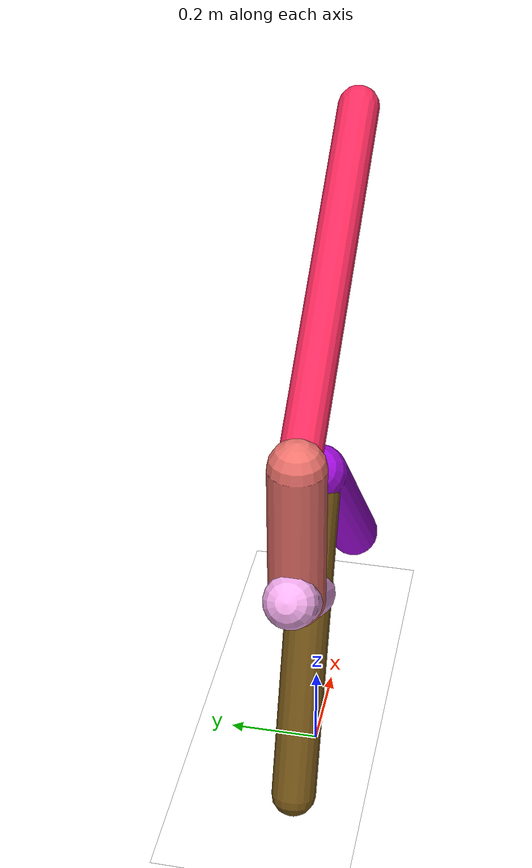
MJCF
<mujoco model="morphology">
  <option timestep="0.01"/>
  <default>
    <default class="/"/>
    <default class="0/"/>
    <default class="0/1/"/>
    <default class="0/2/"/>
    <default class="0/2/3/"/>
    <default class="0/2/3/4/"/>
  </default>
  <asset>
    <texture name="texplane" type="2d" builtin="checker" rgb1="0.10000000000000001 0.20000000000000001 0.29999999999999999" rgb2="0.20000000000000001 0.29999999999999999 0.40000000000000002" width="300" height="300"/>
    <material name="MatPlane" class="/" texture="texplane" texrepeat="20 20" specular="1" shininess="1" reflectance="0.5"/>
  </asset>
  <worldbody>
    <light name="//unnamed_light_0" class="/" directional="true" pos="0 0 1.5" dir="0 0 -1.3" cutoff="100" exponent="1" diffuse="1 1 1" specular="0.10000000000000001 0.10000000000000001 0.10000000000000001"/>
    <geom name="ground" class="/" type="plane" size="15 15 0.5" material="MatPlane" rgba="1 1 1 1"/>
    <site name="body" class="/" size="9.9999999999999995e-07 9.9999999999999995e-07 9.9999999999999995e-07" pos="0 0 0.77126810550689695"/>
    <body pos="0 0 0.77126810550689695" name="0/">
      <joint name="0/rootx/" class="/" type="slide" axis="1 0 0" limited="false" stiffness="0" armature="0" damping="0"/>
      <joint name="0/rootz/" class="/" type="slide" axis="0 0 1" limited="false" stiffness="0" armature="0" damping="0"/>
      <joint name="0/rooty/" class="/" type="hinge" axis="0 1 0" limited="false" stiffness="0" armature="0" damping="0"/>
      <geom name="0/geom" class="0/" type="capsule" contype="1" conaffinity="1" condim="3" size="0.048162133455641909" rgba="0.48620816058351801 0.35514874041507738 0.096488077410527007 1" friction="0.59999999999999998 0.10000000000000001 0.10000000000000001" fromto="0 0 0 -0.26494225054728776 0 -0.67126809894481942"/>
      <site name="0/end0" class="0/" size="0.0050000000000000001" pos="-0.26494225054728776 0 -0.67126809894481942"/>
      <site name="0/attach1" class="0/" size="9.9999999999999995e-07 9.9999999999999995e-07 9.9999999999999995e-07" pos="-0.00076587829759178444 0 -0.0019404593558994166"/>
      <body pos="-0.00076587829759178444 0 -0.0019404593558994166" name="0/1/">
        <joint name="0/1/joint/" class="0/" type="hinge" axis="0 1 0" limited="true" range="-68.309639477992022 68.309639477992022"/>
        <geom name="0/1/geom" class="0/1/" type="capsule" contype="1" conaffinity="1" condim="3" size="0.058908095491325432" rgba="0.64089917892439363 0.04736625288630858 0.87310363161929072 1" friction="0.59999999999999998 0.10000000000000001 0.10000000000000001" fromto="0 0 0 0.49935828008226513 0 -0.55082220733667442"/>
        <site name="0/1/end1" class="0/1/" size="0.0050000000000000001" pos="0.49935828008226513 0 -0.55082220733667442"/>
      </body>
      <site name="0/attach2" class="0/" size="9.9999999999999995e-07 9.9999999999999995e-07 9.9999999999999995e-07" pos="-0.096014106825102793 0 -0.24326511467021794"/>
      <body pos="-0.096014106825102793 0 -0.24326511467021794" name="0/2/">
        <joint name="0/2/joint/" class="0/" type="hinge" axis="0 1 0" limited="true" range="-61.330416394534367 61.330416394534367"/>
        <geom name="0/2/geom" class="0/2/" type="capsule" contype="1" conaffinity="1" condim="3" size="0.055307560030097909" rgba="0.97528226693042297 0.68876270836695641 0.94907431036160383 1" friction="0.59999999999999998 0.10000000000000001 0.10000000000000001" fromto="0 0 0 -0.1925383185503875 0 0.14092497750549748"/>
        <site name="0/2/end2" class="0/2/" size="0.0050000000000000001" pos="-0.1925383185503875 0 0.14092497750549748"/>
        <site name="0/2/attach3" class="0/2/" size="9.9999999999999995e-07 9.9999999999999995e-07 9.9999999999999995e-07" pos="-0.12842852829080217 0 0.094000963531365681"/>
        <body pos="-0.12842852829080217 0 0.094000963531365681" name="0/2/3/">
          <geom name="0/2/3/geom" class="0/2/3/" type="capsule" contype="1" conaffinity="1" condim="3" size="0.057964305058858516" rgba="0.92051851300439136 0.4434520131578239 0.41883219875308386 1" friction="0.59999999999999998 0.10000000000000001 0.10000000000000001" fromto="0 0 0 0.0035307234890551431 0 0.31563379281384352"/>
          <site name="0/2/3/end3" class="0/2/3/" size="0.0050000000000000001" pos="0.0035307234890551431 0 0.31563379281384352"/>
          <site name="0/2/3/attach4" class="0/2/3/" size="9.9999999999999995e-07 9.9999999999999995e-07 9.9999999999999995e-07" pos="0.0033252878595881772 0 0.29726859737762135"/>
          <body pos="0.0033252878595881772 0 0.29726859737762135" name="0/2/3/4/">
            <joint name="0/2/3/4/joint/" class="0/2/3/" type="hinge" axis="0 1 0" limited="true" range="-60.128208261774304 60.128208261774304"/>
            <geom name="0/2/3/4/geom" class="0/2/3/4/" type="capsule" contype="1" conaffinity="1" condim="3" size="0.042630883393672873" rgba="0.98382367155346895 0.16640503869535428 0.36992602312143985 1" friction="0.59999999999999998 0.10000000000000001 0.10000000000000001" fromto="0 0 0 0.63831687581599805 0 0.46007974039205757"/>
            <site name="0/2/3/4/end4" class="0/2/3/4/" size="0.0050000000000000001" pos="0.63831687581599805 0 0.46007974039205757"/>
          </body>
        </body>
      </body>
      <camera name="0/side" class="0/" mode="trackcom" pos="0.40000000000000002 -4 0.20000000000000001" quat="0.70699999999999996 0.70699999999999996 0 0"/>
    </body>
  </worldbody>
  <actuator>
    <motor name="0/1/motor" class="0/1/" ctrllimited="true" ctrlrange="-1 1" gear="77" joint="0/1/joint/"/>
    <motor name="0/2/motor" class="0/2/" ctrllimited="true" ctrlrange="-1 1" gear="68" joint="0/2/joint/"/>
    <motor name="0/2/3/4/motor" class="0/2/3/4/" ctrllimited="true" ctrlrange="-1 1" gear="59" joint="0/2/3/4/joint/"/>
  </actuator>
  <sensor>
    <subtreelinvel name="velocity" body="0/"/>
  </sensor>
</mujoco>
